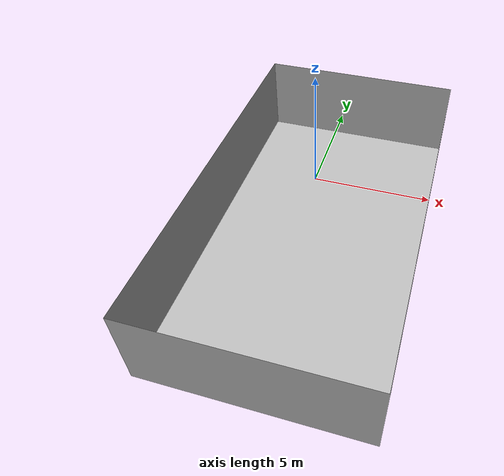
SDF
<?xml version='1.0'?>
<sdf version="1.6">
<model name="pool">
  <static>true</static>
    <link name="link">
      <visual name="visual">
        <geometry>
          <mesh>
            <uri>model://pool/pool.dae</uri>
          </mesh>
        </geometry>
      </visual>
      <collision name="collision">
        <geometry>
          <mesh>
            <uri>model://pool/pool.dae</uri>
          </mesh>
        </geometry>
      </collision>
    </link>
  </model>
</sdf>
